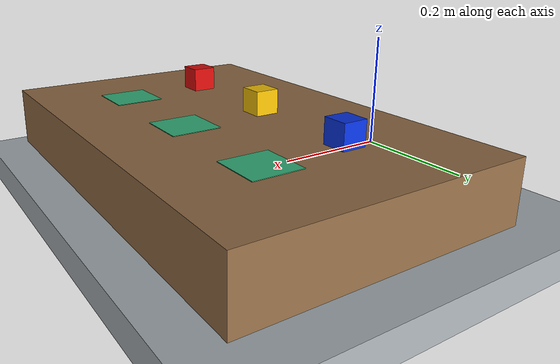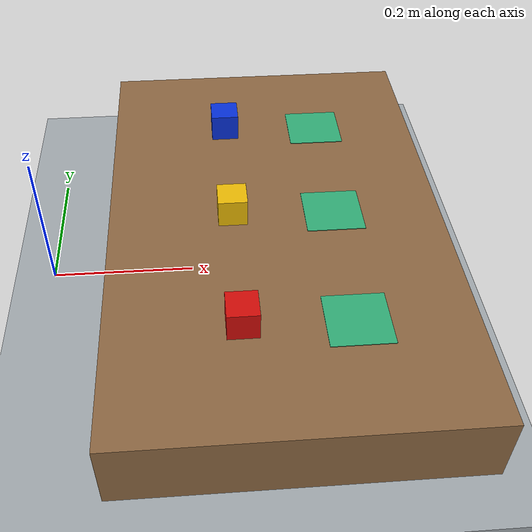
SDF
<?xml version="1.0"?><sdf version="1.6"><world name="default">
  <gravity>0 0 -9.81</gravity>
  <physics name="physics" type="ode"><max_step_size>0.001</max_step_size><real_time_update_rate>1000</real_time_update_rate></physics>
  <scene><ambient>0.6 0.6 0.6 1</ambient><background>0.85 0.89 0.93 1</background><shadows>true</shadows></scene>
  <light name="sun" type="directional"><pose>0 0 10 0 0 0</pose><diffuse>0.8 0.8 0.8 1</diffuse><specular>0.2 0.2 0.2 1</specular><direction>-0.3 -0.3 -1</direction><cast_shadows>true</cast_shadows></light>
  <plugin name="gazebo_ros_state" filename="libgazebo_ros_state.so"><ros><namespace>/gazebo</namespace></ros><update_rate>20</update_rate></plugin>
  <gui><camera name="user_camera"><pose>1.15 -1.25 1.1 0 0.5 2.35</pose></camera></gui>
<model name="floor"><static>true</static>
      <pose>0 0 -0.035 0 0 0</pose><link name="link">
      <inertial><mass>0.05</mass><inertia><ixx>0.00001333</ixx><iyy>0.00001333</iyy><izz>0.00001333</izz></inertia></inertial>
      <collision name="collision"><geometry><box><size>3 3 0.05</size></box></geometry><surface><friction><ode><mu>1</mu><mu2>1</mu2></ode></friction></surface></collision><visual name="visual"><geometry><box><size>3 3 0.05</size></box></geometry><material><ambient>0.65 0.68 0.70 1</ambient><diffuse>0.65 0.68 0.70 1</diffuse></material></visual>
      </link></model>
<model name="work_table"><static>true</static>
      <pose>0.32 0.0 0.05 0 0 0</pose><link name="link">
      <inertial><mass>0.05</mass><inertia><ixx>0.00001333</ixx><iyy>0.00001333</iyy><izz>0.00001333</izz></inertia></inertial>
      <collision name="collision"><geometry><box><size>0.46 0.72 0.1</size></box></geometry><surface><friction><ode><mu>1</mu><mu2>1</mu2></ode></friction></surface></collision><visual name="visual"><geometry><box><size>0.46 0.72 0.1</size></box></geometry><material><ambient>0.57 0.42 0.27 1</ambient><diffuse>0.57 0.42 0.27 1</diffuse></material></visual>
      </link></model>
<model name="red_cube"><static>false</static>
      <pose>0.26 -0.2 0.12 0 0 0</pose><link name="link">
      <inertial><mass>0.05</mass><inertia><ixx>0.00001333</ixx><iyy>0.00001333</iyy><izz>0.00001333</izz></inertia></inertial>
      <collision name="collision"><geometry><box><size>0.04 0.04 0.04</size></box></geometry><surface><friction><ode><mu>1</mu><mu2>1</mu2></ode></friction></surface></collision><visual name="visual"><geometry><box><size>0.04 0.04 0.04</size></box></geometry><material><ambient>0.85 0.05 0.04 1</ambient><diffuse>0.85 0.05 0.04 1</diffuse></material></visual>
      </link></model>
<model name="yellow_cube"><static>false</static>
      <pose>0.26 0.0 0.12 0 0 0</pose><link name="link">
      <inertial><mass>0.05</mass><inertia><ixx>0.00001333</ixx><iyy>0.00001333</iyy><izz>0.00001333</izz></inertia></inertial>
      <collision name="collision"><geometry><box><size>0.04 0.04 0.04</size></box></geometry><surface><friction><ode><mu>1</mu><mu2>1</mu2></ode></friction></surface></collision><visual name="visual"><geometry><box><size>0.04 0.04 0.04</size></box></geometry><material><ambient>0.95 0.75 0.02 1</ambient><diffuse>0.95 0.75 0.02 1</diffuse></material></visual>
      </link></model>
<model name="blue_cube"><static>false</static>
      <pose>0.26 0.2 0.12 0 0 0</pose><link name="link">
      <inertial><mass>0.05</mass><inertia><ixx>0.00001333</ixx><iyy>0.00001333</iyy><izz>0.00001333</izz></inertia></inertial>
      <collision name="collision"><geometry><box><size>0.04 0.04 0.04</size></box></geometry><surface><friction><ode><mu>1</mu><mu2>1</mu2></ode></friction></surface></collision><visual name="visual"><geometry><box><size>0.04 0.04 0.04</size></box></geometry><material><ambient>0.03 0.20 0.88 1</ambient><diffuse>0.03 0.20 0.88 1</diffuse></material></visual>
      </link></model>
<model name="zone_a"><static>true</static>
      <pose>0.4 -0.2 0.1005 0 0 0</pose><link name="link">
      <inertial><mass>0.05</mass><inertia><ixx>0.00001333</ixx><iyy>0.00001333</iyy><izz>0.00001333</izz></inertia></inertial>
      <visual name="visual"><geometry><box><size>0.08 0.08 0.001</size></box></geometry><material><ambient>0.20 0.70 0.48 1</ambient><diffuse>0.20 0.70 0.48 1</diffuse></material></visual>
      </link></model>
<model name="zone_b"><static>true</static>
      <pose>0.4 0.0 0.1005 0 0 0</pose><link name="link">
      <inertial><mass>0.05</mass><inertia><ixx>0.00001333</ixx><iyy>0.00001333</iyy><izz>0.00001333</izz></inertia></inertial>
      <visual name="visual"><geometry><box><size>0.08 0.08 0.001</size></box></geometry><material><ambient>0.20 0.70 0.48 1</ambient><diffuse>0.20 0.70 0.48 1</diffuse></material></visual>
      </link></model>
<model name="zone_c"><static>true</static>
      <pose>0.4 0.2 0.1005 0 0 0</pose><link name="link">
      <inertial><mass>0.05</mass><inertia><ixx>0.00001333</ixx><iyy>0.00001333</iyy><izz>0.00001333</izz></inertia></inertial>
      <visual name="visual"><geometry><box><size>0.08 0.08 0.001</size></box></geometry><material><ambient>0.20 0.70 0.48 1</ambient><diffuse>0.20 0.70 0.48 1</diffuse></material></visual>
      </link></model>
<model name="overview_camera"><static>true</static><pose>1.30 -1.40 1.30 0 0.45 2.25</pose><link name="link">
  <sensor name="overview" type="camera"><always_on>true</always_on><update_rate>6</update_rate>
    <camera><horizontal_fov>1.05</horizontal_fov><image><width>1280</width><height>720</height><format>R8G8B8</format></image><clip><near>0.05</near><far>10</far></clip></camera>
    <plugin name="overview_camera" filename="libgazebo_ros_camera.so"><ros><namespace>/overview</namespace></ros><camera_name>overview</camera_name><frame_name>world</frame_name></plugin>
  </sensor></link></model></world></sdf>
